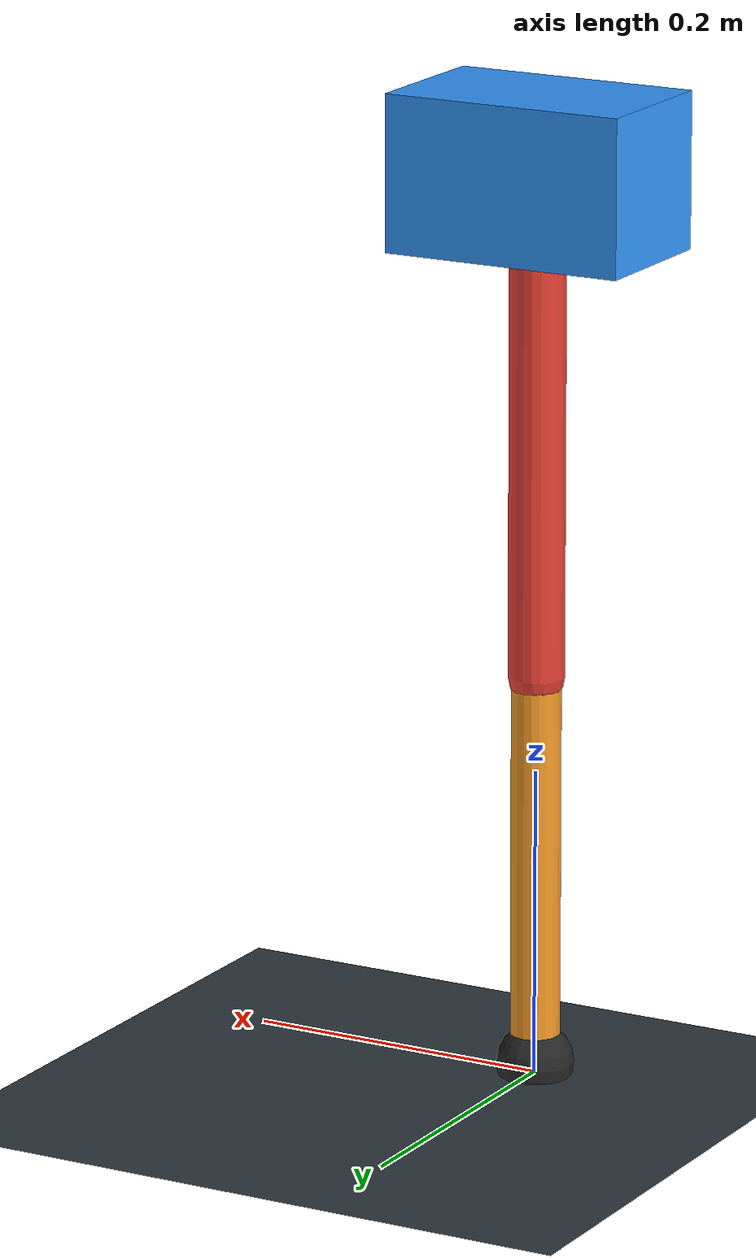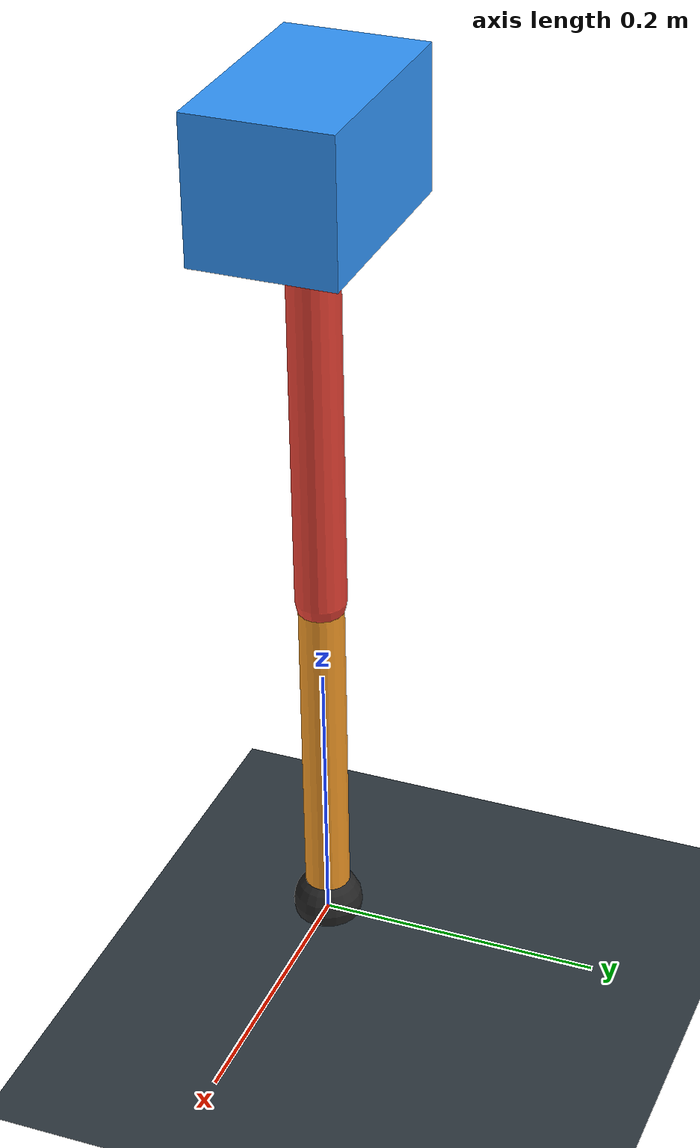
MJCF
<mujoco model="single_axis_two_bar">
  <compiler angle="radian" inertiafromgeom="true"/>
  <option timestep="0.001" integrator="implicitfast" gravity="0 0 -9.81"/>
  <default>
    <joint damping="0.08"/>
    <geom friction="1.2 0.01 0.0001" condim="3"/>
  </default>
  <worldbody>
    <geom name="floor" type="plane" size="5 5 0.1" rgba="0.18 0.22 0.25 1"/>
    <body name="carriage" pos="0 0 0.586149278606215">
      <joint name="pole_slide" type="slide" axis="0 0 1"/>
      <geom name="payload" type="box" size="0.08 0.05 0.05" mass="3.306934627691228" rgba="0.2 0.6 1 1"/>
      <body name="thigh" pos="0 0 0">
        <joint name="hip" type="hinge" axis="0 1 0"/>
        <geom name="thigh_link" type="capsule" fromto="0 0 0 0 0 -0.32338982217897444" size="0.018" mass="0.23041952152200024" rgba="0.9 0.25 0.2 1"/>
        <body name="shank" pos="0 0 -0.32338982217897444">
          <joint name="knee" type="hinge" axis="0 1 0"/>
          <geom name="shank_link" type="capsule" fromto="0 0 0 0 0 -0.2551145887552678" size="0.016" mass="0.1817725155299972" rgba="0.95 0.6 0.15 1"/>
          <geom name="foot" type="sphere" pos="0 0 -0.2551145887552678" size="0.025" mass="0.03" rgba="0.15 0.15 0.15 1"/>
          <site name="toe" pos="0 0 -0.2551145887552678" size="0.008"/>
        </body>
      </body>
    </body>
  </worldbody>
  <actuator>
    <motor name="hip_motor" joint="hip" ctrlrange="-29.397869843458984 29.397869843458984"/>
    <motor name="knee_motor" joint="knee" ctrlrange="-163.81018700143352 163.81018700143352"/>
  </actuator>
</mujoco>
